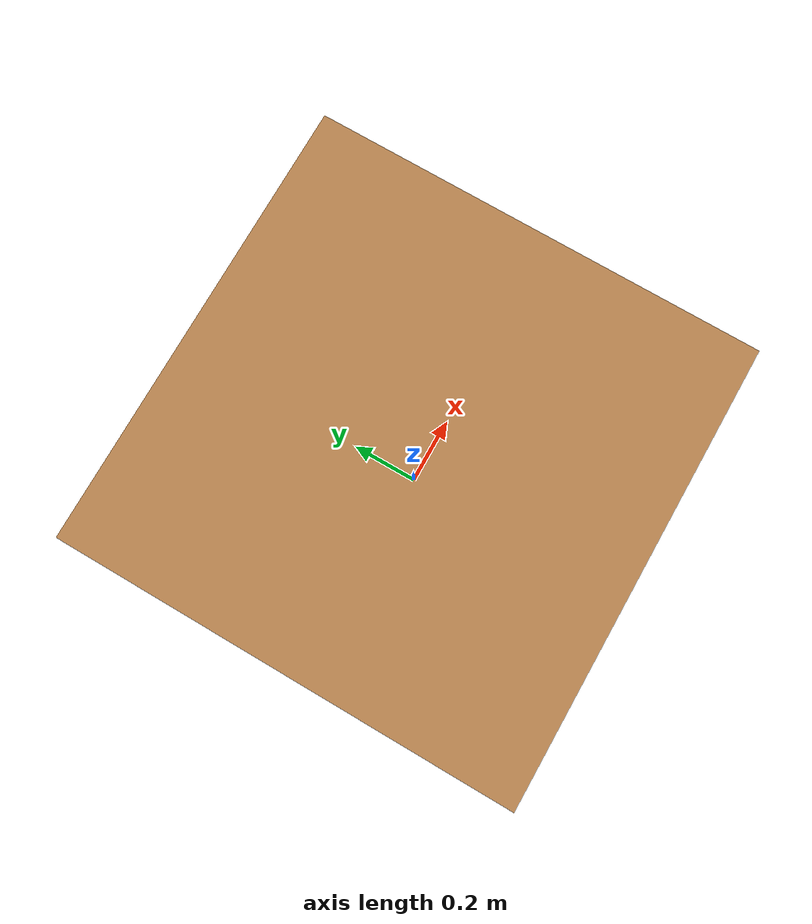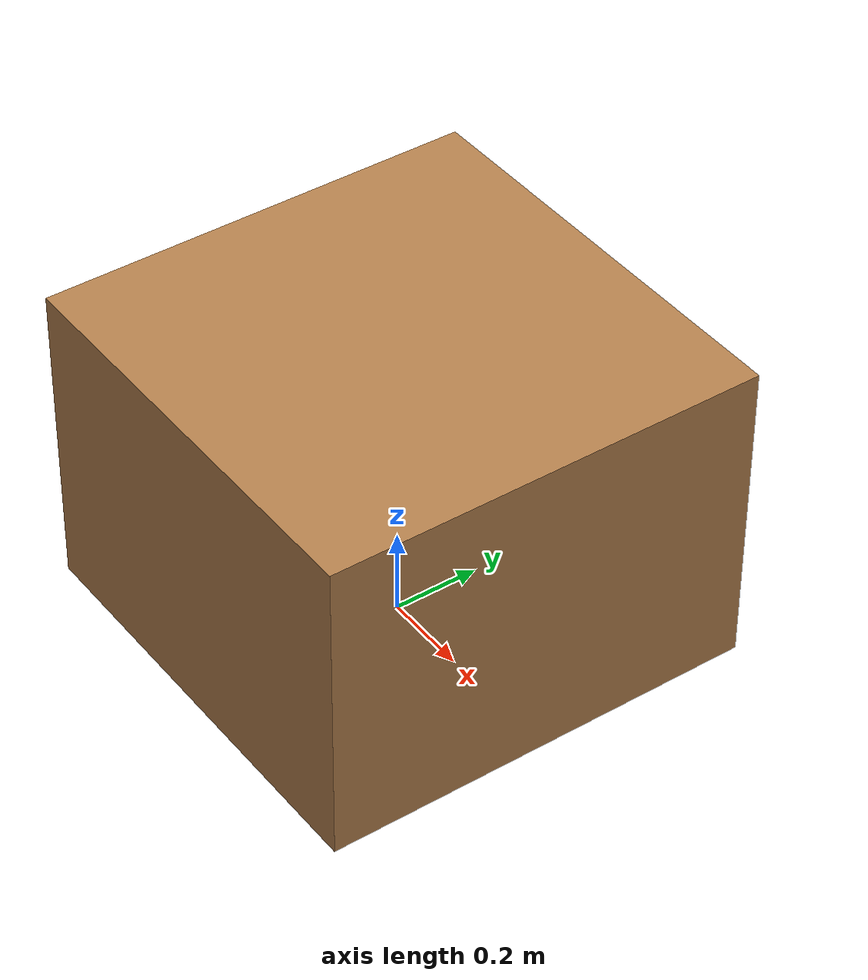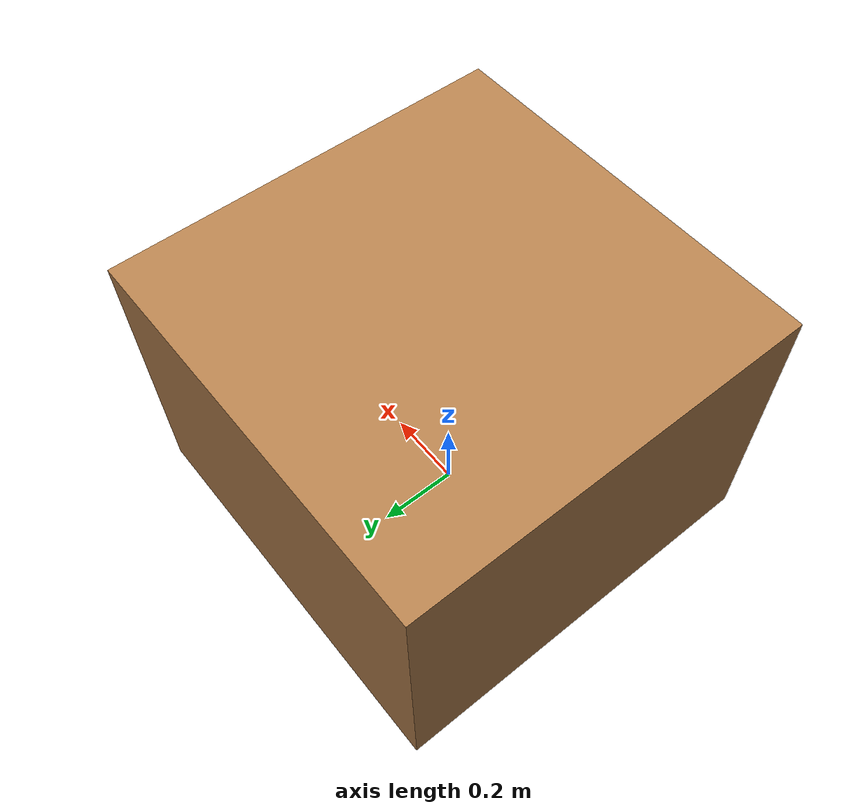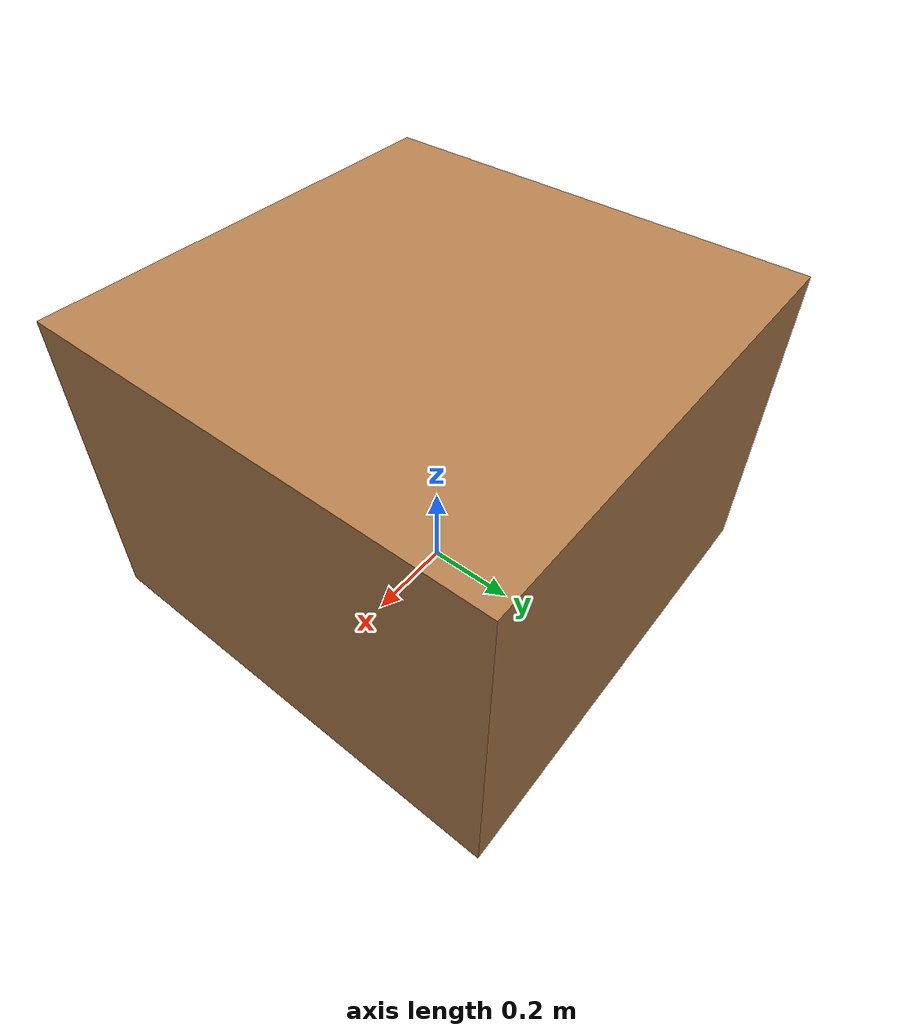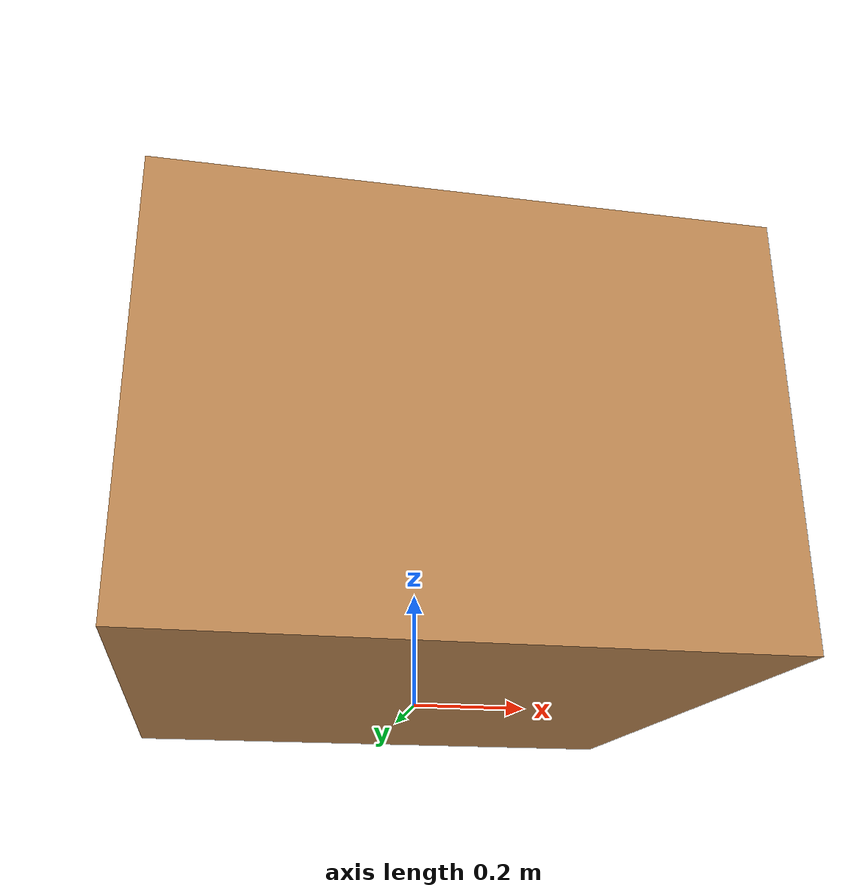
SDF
<?xml version='1.0'?>
<sdf version='1.6'>
    <model name='b_table'>
        <static>false</static>

        <pose>0 0 0 0 0 0</pose>

        <link name='link'>
            <pose>0 0 0.36 0 0 0</pose>

            <gravity>false</gravity>

           <collision name='collision'>
               <geometry>
                   <box>
                        <size>1.0 1.0 0.72</size>
                    </box>
               </geometry>
           </collision>

            <visual name='visual'>
                <geometry>
                   <box>
                        <size>1.0 1.0 0.72</size>
                    </box>
               </geometry>
               <material>
                    <script>
                        <name>Gazebo/WoodFloor</name>
                        <uri>file://media/materials/scripts/gazebo.material</uri>
                    </script>
                </material>
            </visual>

        </link>
    </model>
</sdf>
